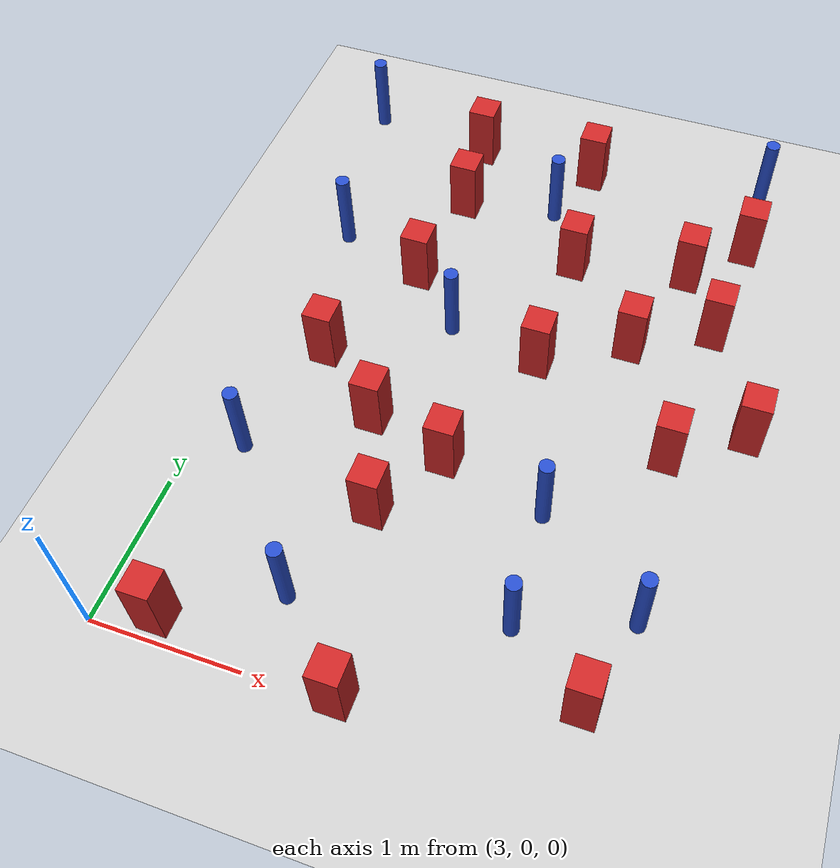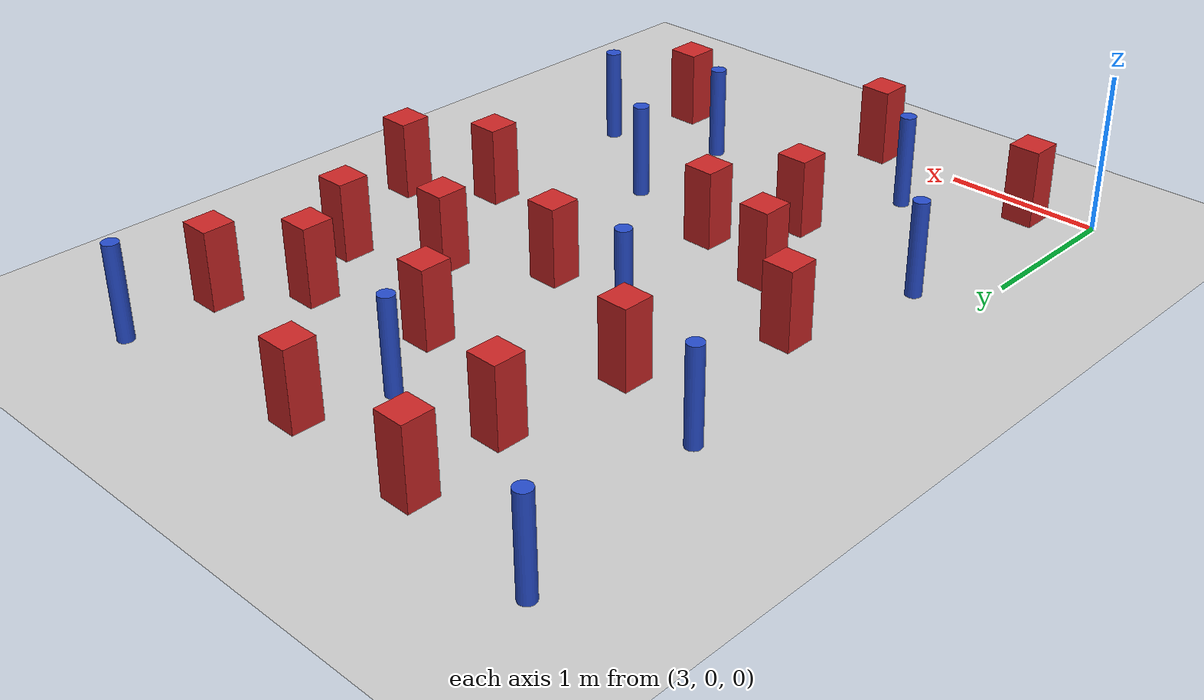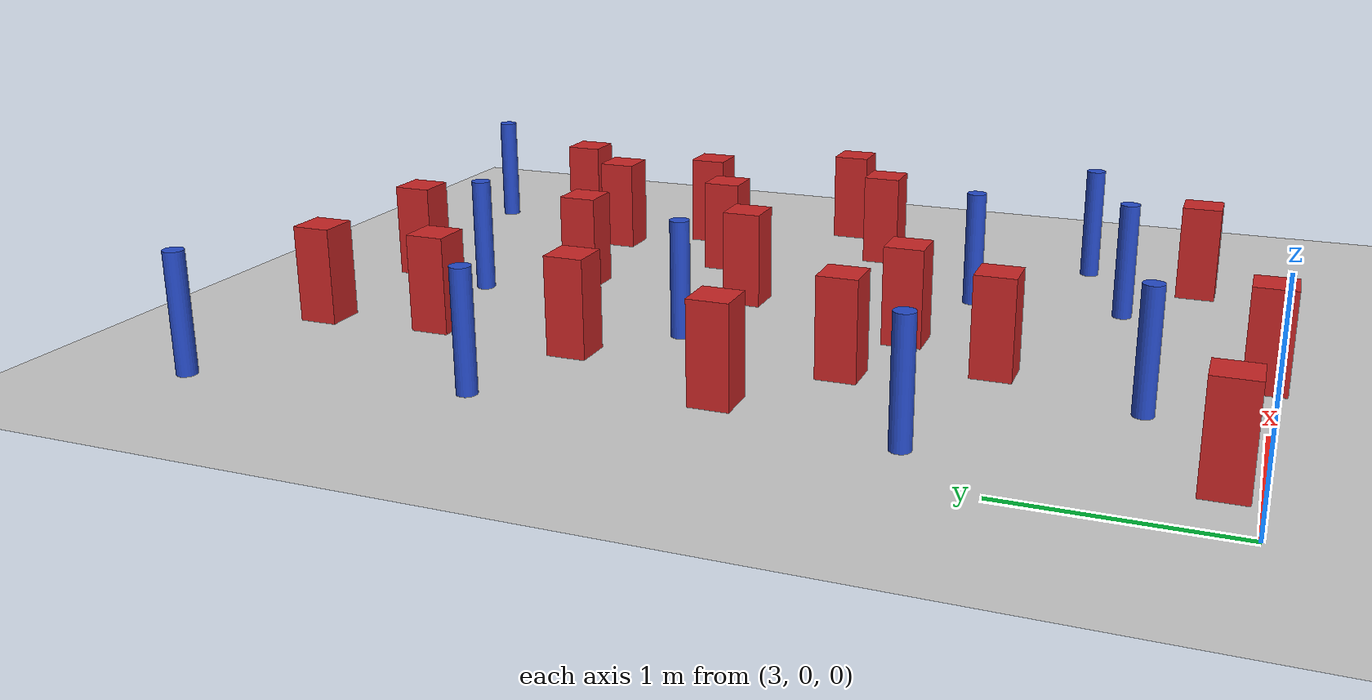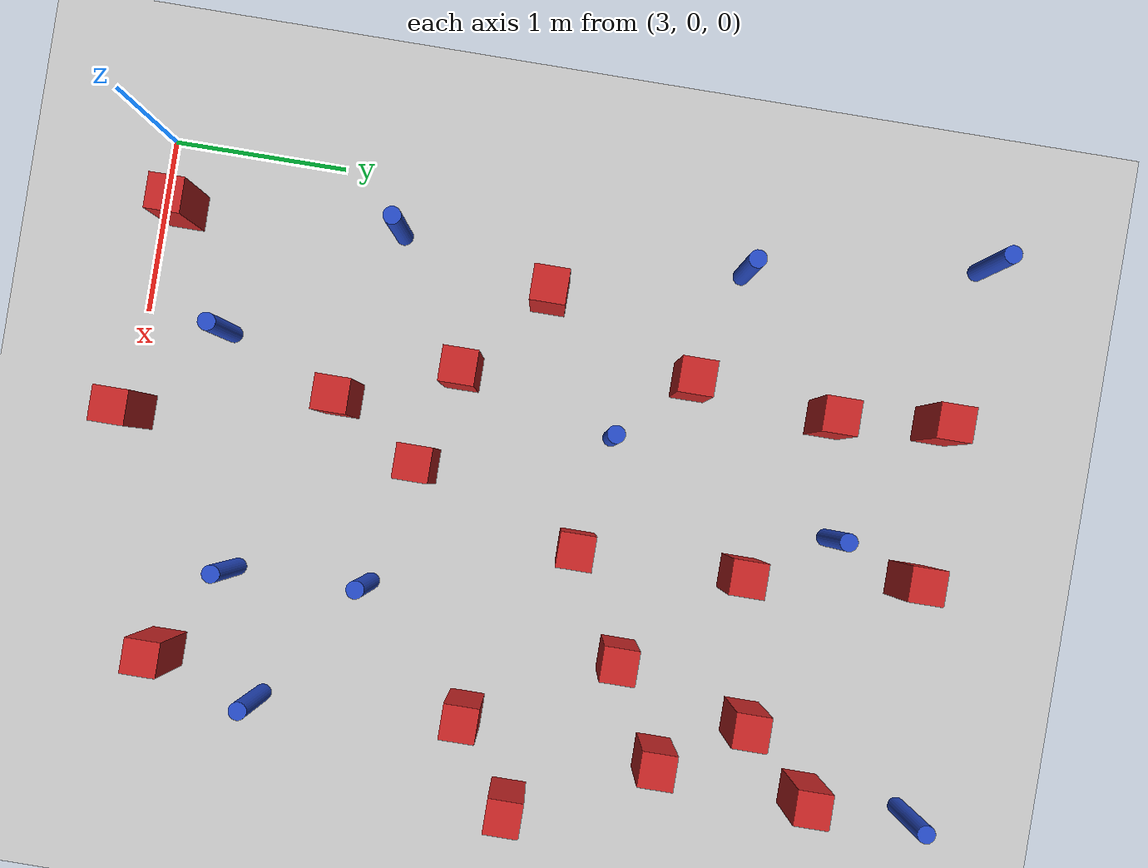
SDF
<sdf version="1.6">
 <world name="default">
  <model name="ground_plane">
   <static>1</static>
   <link name="link">
    <collision name="collision">
     <geometry><plane><normal>0 0 1</normal><size>100 100</size></plane></geometry>
     <surface><friction><ode><mu>100</mu><mu2>50</mu2></ode></friction></surface>
    </collision>
    <visual name="visual">
     <cast_shadows>0</cast_shadows>
     <geometry><plane><normal>0 0 1</normal><size>100 100</size></plane></geometry>
     <material>
      <ambient>1.0 1.0 1.0 1.0</ambient>
      <diffuse>0.8 0.8 0.8 1.0</diffuse>
      <specular>0.01 0.01 0.01 1.000000</specular>
     </material>
    </visual>
   </link>
  </model>
  <model name="square_post_obstacle0">
   <static>true</static>
   <pose>4.83513216771 4.59395278403 1.91545236811e-07 -7.35059704564e-06 1.12565212e-07 2.39332434364e-05</pose>
   <link name="link">
    <pose>0 0 0.25 0 -0 0</pose>
    <inertial>
     <mass>100</mass>
     <inertia>
      <ixx>0.166667</ixx>
      <ixy>0</ixy>
      <ixz>0</ixz>
      <iyy>0.166667</iyy>
      <iyz>0</iyz>
      <izz>0.166667</izz>
     </inertia>
    </inertial>
    <collision name="collision"><geometry><box><size>.2 .2 .5</size></box></geometry></collision>
    <visual name="visual">
     <geometry><box><size>.2 .2 .5</size></box></geometry>
     <material>
      <script><name>Gazebo/Red</name><uri>file://media/materials/scripts/gazebo.material</uri></script>
     </material>
    </visual>
   </link>
  </model>
  <model name="pole_obstacle2">
   <static>true</static>
   <pose>3.33145633506 1.40488259142 7.38925637345e-09 -8.471706928e-08 1.24976765152e-08 -1.74513093012e-07</pose>
   <link name="link">
    <pose>0 0 0.3 0 -0 0</pose>
    <inertial>
     <mass>1</mass>
     <inertia><ixx>0.145833</ixx><ixy>0</ixy><ixz>0</ixz><iyy>0.145833</iyy><iyz>0</iyz><izz>0.125</izz></inertia>
    </inertial>
    <collision name="collision">
     <geometry><cylinder><radius>0.05</radius><length>.6</length></cylinder></geometry>
    </collision>
    <visual name="visual">
     <geometry><cylinder><radius>0.05</radius><length>.6</length></cylinder></geometry>
     <material>
      <script><name>Gazebo/Blue</name><uri>file://media/materials/scripts/gazebo.material</uri></script>
     </material>
    </visual>
   </link>
  </model>
  <model name="pole_obstacle5">
   <static>true</static>
   <pose>3.24524591812 3.37877908854 7.38925637345e-09 -8.47170692798e-08 1.24976764939e-08 -1.74513093025e-07</pose>
   <link name="link">
    <pose>0 0 0.3 0 -0 0</pose>
    <inertial>
     <mass>1</mass>
     <inertia><ixx>0.145833</ixx><ixy>0</ixy><ixz>0</ixz><iyy>0.145833</iyy><iyz>0</iyz><izz>0.125</izz></inertia>
    </inertial>
    <collision name="collision">
     <geometry><cylinder><radius>0.05</radius><length>.6</length></cylinder></geometry>
    </collision>
    <visual name="visual">
     <geometry><cylinder><radius>0.05</radius><length>.6</length></cylinder></geometry>
     <material>
      <script><name>Gazebo/Blue</name><uri>file://media/materials/scripts/gazebo.material</uri></script>
     </material>
    </visual>
   </link>
  </model>
  <model name="square_post_obstacle29">
   <static>true</static>
   <pose>6.13708607684 4.17404303064 1.91545236811e-07 -7.35059704564e-06 1.12565212e-07 2.39332434364e-05</pose>
   <link name="link">
    <pose>0 0 0.25 0 -0 0</pose>
    <inertial>
     <mass>100</mass>
     <inertia>
      <ixx>0.166667</ixx>
      <ixy>0</ixy>
      <ixz>0</ixz>
      <iyy>0.166667</iyy>
      <iyz>0</iyz>
      <izz>0.166667</izz>
     </inertia>
    </inertial>
    <collision name="collision"><geometry><box><size>.2 .2 .5</size></box></geometry></collision>
    <visual name="visual">
     <geometry><box><size>.2 .2 .5</size></box></geometry>
     <material>
      <script><name>Gazebo/Red</name><uri>file://media/materials/scripts/gazebo.material</uri></script>
     </material>
    </visual>
   </link>
  </model>
  <model name="pole_obstacle30">
   <static>true</static>
   <pose>5.3441508463 1.53255572151 7.38925637345e-09 -8.471706928e-08 1.24976765134e-08 -1.74513093015e-07</pose>
   <link name="link">
    <pose>0 0 0.3 0 -0 0</pose>
    <inertial>
     <mass>1</mass>
     <inertia><ixx>0.145833</ixx><ixy>0</ixy><ixz>0</ixz><iyy>0.145833</iyy><iyz>0</iyz><izz>0.125</izz></inertia>
    </inertial>
    <collision name="collision">
     <geometry><cylinder><radius>0.05</radius><length>.6</length></cylinder></geometry>
    </collision>
    <visual name="visual">
     <geometry><cylinder><radius>0.05</radius><length>.6</length></cylinder></geometry>
     <material>
      <script><name>Gazebo/Blue</name><uri>file://media/materials/scripts/gazebo.material</uri></script>
     </material>
    </visual>
   </link>
  </model>
  <model name="square_post_obstacle35">
   <static>true</static>
   <pose>4.6240850288 1.71312362912 1.91545236811e-07 -7.35059704564e-06 1.12565212e-07 2.39332434364e-05</pose>
   <link name="link">
    <pose>0 0 0.25 0 -0 0</pose>
    <inertial>
     <mass>100</mass>
     <inertia>
      <ixx>0.166667</ixx>
      <ixy>0</ixy>
      <ixz>0</ixz>
      <iyy>0.166667</iyy>
      <iyz>0</iyz>
      <izz>0.166667</izz>
     </inertia>
    </inertial>
    <collision name="collision"><geometry><box><size>.2 .2 .5</size></box></geometry></collision>
    <visual name="visual">
     <geometry><box><size>.2 .2 .5</size></box></geometry>
     <material>
      <script><name>Gazebo/Red</name><uri>file://media/materials/scripts/gazebo.material</uri></script>
     </material>
    </visual>
   </link>
  </model>
  <model name="square_post_obstacle40">
   <static>true</static>
   <pose>4.32281516901 1.21332361895 1.91545236811e-07 -7.35059704564e-06 1.12565212e-07 2.39332434364e-05</pose>
   <link name="link">
    <pose>0 0 0.25 0 -0 0</pose>
    <inertial>
     <mass>100</mass>
     <inertia>
      <ixx>0.166667</ixx>
      <ixy>0</ixy>
      <ixz>0</ixz>
      <iyy>0.166667</iyy>
      <iyz>0</iyz>
      <izz>0.166667</izz>
     </inertia>
    </inertial>
    <collision name="collision"><geometry><box><size>.2 .2 .5</size></box></geometry></collision>
    <visual name="visual">
     <geometry><box><size>.2 .2 .5</size></box></geometry>
     <material>
      <script><name>Gazebo/Red</name><uri>file://media/materials/scripts/gazebo.material</uri></script>
     </material>
    </visual>
   </link>
  </model>
  <model name="square_post_obstacle47">
   <static>true</static>
   <pose>6.45544308713 2.51247155464 1.91545236811e-07 -7.35059704564e-06 1.12565212e-07 2.39332434364e-05</pose>
   <link name="link">
    <pose>0 0 0.25 0 -0 0</pose>
    <inertial>
     <mass>100</mass>
     <inertia>
      <ixx>0.166667</ixx>
      <ixy>0</ixy>
      <ixz>0</ixz>
      <iyy>0.166667</iyy>
      <iyz>0</iyz>
      <izz>0.166667</izz>
     </inertia>
    </inertial>
    <collision name="collision"><geometry><box><size>.2 .2 .5</size></box></geometry></collision>
    <visual name="visual">
     <geometry><box><size>.2 .2 .5</size></box></geometry>
     <material>
      <script><name>Gazebo/Red</name><uri>file://media/materials/scripts/gazebo.material</uri></script>
     </material>
    </visual>
   </link>
  </model>
  <model name="square_post_obstacle55">
   <static>true</static>
   <pose>3.92985841278 4.60441485772 1.91545236811e-07 -7.35059704564e-06 1.12565212e-07 2.39332434364e-05</pose>
   <link name="link">
    <pose>0 0 0.25 0 -0 0</pose>
    <inertial>
     <mass>100</mass>
     <inertia>
      <ixx>0.166667</ixx>
      <ixy>0</ixy>
      <ixz>0</ixz>
      <iyy>0.166667</iyy>
      <iyz>0</iyz>
      <izz>0.166667</izz>
     </inertia>
    </inertial>
    <collision name="collision"><geometry><box><size>.2 .2 .5</size></box></geometry></collision>
    <visual name="visual">
     <geometry><box><size>.2 .2 .5</size></box></geometry>
     <material>
      <script><name>Gazebo/Red</name><uri>file://media/materials/scripts/gazebo.material</uri></script>
     </material>
    </visual>
   </link>
  </model>
  <model name="square_post_obstacle57">
   <static>true</static>
   <pose>3.542926451 2.29667868906 1.91545236811e-07 -7.35059704564e-06 1.12565212e-07 2.39332434364e-05</pose>
   <link name="link">
    <pose>0 0 0.25 0 -0 0</pose>
    <inertial>
     <mass>100</mass>
     <inertia>
      <ixx>0.166667</ixx>
      <ixy>0</ixy>
      <ixz>0</ixz>
      <iyy>0.166667</iyy>
      <iyz>0</iyz>
      <izz>0.166667</izz>
     </inertia>
    </inertial>
    <collision name="collision"><geometry><box><size>.2 .2 .5</size></box></geometry></collision>
    <visual name="visual">
     <geometry><box><size>.2 .2 .5</size></box></geometry>
     <material>
      <script><name>Gazebo/Red</name><uri>file://media/materials/scripts/gazebo.material</uri></script>
     </material>
    </visual>
   </link>
  </model>
  <model name="square_post_obstacle67">
   <static>true</static>
   <pose>6.0665706969 3.30246107337 1.91545236811e-07 -7.35059704564e-06 1.12565212e-07 2.39332434364e-05</pose>
   <link name="link">
    <pose>0 0 0.25 0 -0 0</pose>
    <inertial>
     <mass>100</mass>
     <inertia>
      <ixx>0.166667</ixx>
      <ixy>0</ixy>
      <ixz>0</ixz>
      <iyy>0.166667</iyy>
      <iyz>0</iyz>
      <izz>0.166667</izz>
     </inertia>
    </inertial>
    <collision name="collision"><geometry><box><size>.2 .2 .5</size></box></geometry></collision>
    <visual name="visual">
     <geometry><box><size>.2 .2 .5</size></box></geometry>
     <material>
      <script><name>Gazebo/Red</name><uri>file://media/materials/scripts/gazebo.material</uri></script>
     </material>
    </visual>
   </link>
  </model>
  <model name="pole_obstacle87">
   <static>true</static>
   <pose>6.08694970743 1.01501366397 7.38925637345e-09 -8.47170692801e-08 1.24976765139e-08 -1.74513093014e-07</pose>
   <link name="link">
    <pose>0 0 0.3 0 -0 0</pose>
    <inertial>
     <mass>1</mass>
     <inertia><ixx>0.145833</ixx><ixy>0</ixy><ixz>0</ixz><iyy>0.145833</iyy><iyz>0</iyz><izz>0.125</izz></inertia>
    </inertial>
    <collision name="collision">
     <geometry><cylinder><radius>0.05</radius><length>.6</length></cylinder></geometry>
    </collision>
    <visual name="visual">
     <geometry><cylinder><radius>0.05</radius><length>.6</length></cylinder></geometry>
     <material>
      <script><name>Gazebo/Blue</name><uri>file://media/materials/scripts/gazebo.material</uri></script>
     </material>
    </visual>
   </link>
  </model>
  <model name="pole_obstacle90">
   <static>true</static>
   <pose>4.29590201549 2.78081342382 7.38925637345e-09 -8.47170692798e-08 1.24976764937e-08 -1.74513093023e-07</pose>
   <link name="link">
    <pose>0 0 0.3 0 -0 0</pose>
    <inertial>
     <mass>1</mass>
     <inertia><ixx>0.145833</ixx><ixy>0</ixy><ixz>0</ixz><iyy>0.145833</iyy><iyz>0</iyz><izz>0.125</izz></inertia>
    </inertial>
    <collision name="collision">
     <geometry><cylinder><radius>0.05</radius><length>.6</length></cylinder></geometry>
    </collision>
    <visual name="visual">
     <geometry><cylinder><radius>0.05</radius><length>.6</length></cylinder></geometry>
     <material>
      <script><name>Gazebo/Blue</name><uri>file://media/materials/scripts/gazebo.material</uri></script>
     </material>
    </visual>
   </link>
  </model>
  <model name="square_post_obstacle86">
   <static>true</static>
   <pose>5.90977228362 0.421956221232 1.91545236811e-07 -7.35059704564e-06 1.12565212e-07 2.39332434364e-05</pose>
   <link name="link">
    <pose>0 0 0.25 0 -0 0</pose>
    <inertial>
     <mass>100</mass>
     <inertia>
      <ixx>0.166667</ixx>
      <ixy>0</ixy>
      <ixz>0</ixz>
      <iyy>0.166667</iyy>
      <iyz>0</iyz>
      <izz>0.166667</izz>
     </inertia>
    </inertial>
    <collision name="collision"><geometry><box><size>.2 .2 .5</size></box></geometry></collision>
    <visual name="visual">
     <geometry><box><size>.2 .2 .5</size></box></geometry>
     <material>
      <script><name>Gazebo/Red</name><uri>file://media/materials/scripts/gazebo.material</uri></script>
     </material>
    </visual>
   </link>
  </model>
  <model name="square_post_obstacle109">
   <static>true</static>
   <pose>4.95821048879 2.67198824912 1.91545236811e-07 -7.35059704564e-06 1.12565212e-07 2.39332434364e-05</pose>
   <link name="link">
    <pose>0 0 0.25 0 -0 0</pose>
    <inertial>
     <mass>100</mass>
     <inertia>
      <ixx>0.166667</ixx>
      <ixy>0</ixy>
      <ixz>0</ixz>
      <iyy>0.166667</iyy>
      <iyz>0</iyz>
      <izz>0.166667</izz>
     </inertia>
    </inertial>
    <collision name="collision"><geometry><box><size>.2 .2 .5</size></box></geometry></collision>
    <visual name="visual">
     <geometry><box><size>.2 .2 .5</size></box></geometry>
     <material>
      <script><name>Gazebo/Red</name><uri>file://media/materials/scripts/gazebo.material</uri></script>
     </material>
    </visual>
   </link>
  </model>
  <model name="pole_obstacle128">
   <static>true</static>
   <pose>4.66731109296 4.10421571171 7.38925637345e-09 -8.47170692796e-08 1.24976764786e-08 -1.74513093032e-07</pose>
   <link name="link">
    <pose>0 0 0.3 0 -0 0</pose>
    <inertial>
     <mass>1</mass>
     <inertia><ixx>0.145833</ixx><ixy>0</ixy><ixz>0</ixz><iyy>0.145833</iyy><iyz>0</iyz><izz>0.125</izz></inertia>
    </inertial>
    <collision name="collision">
     <geometry><cylinder><radius>0.05</radius><length>.6</length></cylinder></geometry>
    </collision>
    <visual name="visual">
     <geometry><cylinder><radius>0.05</radius><length>.6</length></cylinder></geometry>
     <material>
      <script><name>Gazebo/Blue</name><uri>file://media/materials/scripts/gazebo.material</uri></script>
     </material>
    </visual>
   </link>
  </model>
  <model name="square_post_obstacle131">
   <static>true</static>
   <pose>5.53539433607 3.00687245319 1.91545236811e-07 -7.35059704564e-06 1.12565212e-07 2.39332434364e-05</pose>
   <link name="link">
    <pose>0 0 0.25 0 -0 0</pose>
    <inertial>
     <mass>100</mass>
     <inertia>
      <ixx>0.166667</ixx>
      <ixy>0</ixy>
      <ixz>0</ixz>
      <iyy>0.166667</iyy>
      <iyz>0</iyz>
      <izz>0.166667</izz>
     </inertia>
    </inertial>
    <collision name="collision"><geometry><box><size>.2 .2 .5</size></box></geometry></collision>
    <visual name="visual">
     <geometry><box><size>.2 .2 .5</size></box></geometry>
     <material>
      <script><name>Gazebo/Red</name><uri>file://media/materials/scripts/gazebo.material</uri></script>
     </material>
    </visual>
   </link>
  </model>
  <model name="pole_obstacle151">
   <static>true</static>
   <pose>5.38533523814 0.754646965506 7.38925637345e-09 -8.47170692799e-08 1.24976765038e-08 -1.74513093018e-07</pose>
   <link name="link">
    <pose>0 0 0.3 0 -0 0</pose>
    <inertial>
     <mass>1</mass>
     <inertia><ixx>0.145833</ixx><ixy>0</ixy><ixz>0</ixz><iyy>0.145833</iyy><iyz>0</iyz><izz>0.125</izz></inertia>
    </inertial>
    <collision name="collision">
     <geometry><cylinder><radius>0.05</radius><length>.6</length></cylinder></geometry>
    </collision>
    <visual name="visual">
     <geometry><cylinder><radius>0.05</radius><length>.6</length></cylinder></geometry>
     <material>
      <script><name>Gazebo/Blue</name><uri>file://media/materials/scripts/gazebo.material</uri></script>
     </material>
    </visual>
   </link>
  </model>
  <model name="square_post_obstacle144">
   <static>true</static>
   <pose>4.95369548418 3.62554451247 1.91545236811e-07 -7.35059704564e-06 1.12565212e-07 2.39332434364e-05</pose>
   <link name="link">
    <pose>0 0 0.25 0 -0 0</pose>
    <inertial>
     <mass>100</mass>
     <inertia>
      <ixx>0.166667</ixx>
      <ixy>0</ixy>
      <ixz>0</ixz>
      <iyy>0.166667</iyy>
      <iyz>0</iyz>
      <izz>0.166667</izz>
     </inertia>
    </inertial>
    <collision name="collision"><geometry><box><size>.2 .2 .5</size></box></geometry></collision>
    <visual name="visual">
     <geometry><box><size>.2 .2 .5</size></box></geometry>
     <material>
      <script><name>Gazebo/Red</name><uri>file://media/materials/scripts/gazebo.material</uri></script>
     </material>
    </visual>
   </link>
  </model>
  <model name="square_post_obstacle158">
   <static>true</static>
   <pose>4.05989963006 1.87571669476 1.91545236811e-07 -7.35059704564e-06 1.12565212e-07 2.39332434364e-05</pose>
   <link name="link">
    <pose>0 0 0.25 0 -0 0</pose>
    <inertial>
     <mass>100</mass>
     <inertia>
      <ixx>0.166667</ixx>
      <ixy>0</ixy>
      <ixz>0</ixz>
      <iyy>0.166667</iyy>
      <iyz>0</iyz>
      <izz>0.166667</izz>
     </inertia>
    </inertial>
    <collision name="collision"><geometry><box><size>.2 .2 .5</size></box></geometry></collision>
    <visual name="visual">
     <geometry><box><size>.2 .2 .5</size></box></geometry>
     <material>
      <script><name>Gazebo/Red</name><uri>file://media/materials/scripts/gazebo.material</uri></script>
     </material>
    </visual>
   </link>
  </model>
  <model name="pole_obstacle167">
   <static>true</static>
   <pose>3.0022311975 4.72558989187 7.38925637345e-09 -8.47170692798e-08 1.24976765033e-08 -1.74513093019e-07</pose>
   <link name="link">
    <pose>0 0 0.3 0 -0 0</pose>
    <inertial>
     <mass>1</mass>
     <inertia><ixx>0.145833</ixx><ixy>0</ixy><ixz>0</ixz><iyy>0.145833</iyy><iyz>0</iyz><izz>0.125</izz></inertia>
    </inertial>
    <collision name="collision">
     <geometry><cylinder><radius>0.05</radius><length>.6</length></cylinder></geometry>
    </collision>
    <visual name="visual">
     <geometry><cylinder><radius>0.05</radius><length>.6</length></cylinder></geometry>
     <material>
      <script><name>Gazebo/Blue</name><uri>file://media/materials/scripts/gazebo.material</uri></script>
     </material>
    </visual>
   </link>
  </model>
  <model name="pole_obstacle171">
   <static>true</static>
   <pose>4.05219927883 0.514866557613 7.38925637345e-09 -8.471706928e-08 1.24976765164e-08 -1.74513093012e-07</pose>
   <link name="link">
    <pose>0 0 0.3 0 -0 0</pose>
    <inertial>
     <mass>1</mass>
     <inertia><ixx>0.145833</ixx><ixy>0</ixy><ixz>0</ixz><iyy>0.145833</iyy><iyz>0</iyz><izz>0.125</izz></inertia>
    </inertial>
    <collision name="collision">
     <geometry><cylinder><radius>0.05</radius><length>.6</length></cylinder></geometry>
    </collision>
    <visual name="visual">
     <geometry><cylinder><radius>0.05</radius><length>.6</length></cylinder></geometry>
     <material>
      <script><name>Gazebo/Blue</name><uri>file://media/materials/scripts/gazebo.material</uri></script>
     </material>
    </visual>
   </link>
  </model>
  <model name="pole_obstacle184">
   <static>true</static>
   <pose>6.14451662533 4.76596867383 7.38925637345e-09 -8.47170692796e-08 1.24976764786e-08 -1.74513093032e-07</pose>
   <link name="link">
    <pose>0 0 0.3 0 -0 0</pose>
    <inertial>
     <mass>1</mass>
     <inertia><ixx>0.145833</ixx><ixy>0</ixy><ixz>0</ixz><iyy>0.145833</iyy><iyz>0</iyz><izz>0.125</izz></inertia>
    </inertial>
    <collision name="collision">
     <geometry><cylinder><radius>0.05</radius><length>.6</length></cylinder></geometry>
    </collision>
    <visual name="visual">
     <geometry><cylinder><radius>0.05</radius><length>.6</length></cylinder></geometry>
     <material>
      <script><name>Gazebo/Blue</name><uri>file://media/materials/scripts/gazebo.material</uri></script>
     </material>
    </visual>
   </link>
  </model>
  <model name="square_post_obstacle178">
   <static>true</static>
   <pose>5.98564520383 2.19281158726 1.91545236811e-07 -7.35059704564e-06 1.12565212e-07 2.39332434364e-05</pose>
   <link name="link">
    <pose>0 0 0.25 0 -0 0</pose>
    <inertial>
     <mass>100</mass>
     <inertia>
      <ixx>0.166667</ixx>
      <ixy>0</ixy>
      <ixz>0</ixz>
      <iyy>0.166667</iyy>
      <iyz>0</iyz>
      <izz>0.166667</izz>
     </inertia>
    </inertial>
    <collision name="collision"><geometry><box><size>.2 .2 .5</size></box></geometry></collision>
    <visual name="visual">
     <geometry><box><size>.2 .2 .5</size></box></geometry>
     <material>
      <script><name>Gazebo/Red</name><uri>file://media/materials/scripts/gazebo.material</uri></script>
     </material>
    </visual>
   </link>
  </model>
  <model name="square_post_obstacle198">
   <static>true</static>
   <pose>3.38894658551 0.144630837443 1.91545236811e-07 -7.35059704564e-06 1.12565212e-07 2.39332434364e-05</pose>
   <link name="link">
    <pose>0 0 0.25 0 -0 0</pose>
    <inertial>
     <mass>100</mass>
     <inertia>
      <ixx>0.166667</ixx>
      <ixy>0</ixy>
      <ixz>0</ixz>
      <iyy>0.166667</iyy>
      <iyz>0</iyz>
      <izz>0.166667</izz>
     </inertia>
    </inertial>
    <collision name="collision"><geometry><box><size>.2 .2 .5</size></box></geometry></collision>
    <visual name="visual">
     <geometry><box><size>.2 .2 .5</size></box></geometry>
     <material>
      <script><name>Gazebo/Red</name><uri>file://media/materials/scripts/gazebo.material</uri></script>
     </material>
    </visual>
   </link>
  </model>
  <model name="square_post_obstacle202">
   <static>true</static>
   <pose>3.99283770379 3.98304295684 1.91545236811e-07 -7.35059704564e-06 1.12565212e-07 2.39332434364e-05</pose>
   <link name="link">
    <pose>0 0 0.25 0 -0 0</pose>
    <inertial>
     <mass>100</mass>
     <inertia>
      <ixx>0.166667</ixx>
      <ixy>0</ixy>
      <ixz>0</ixz>
      <iyy>0.166667</iyy>
      <iyz>0</iyz>
      <izz>0.166667</izz>
     </inertia>
    </inertial>
    <collision name="collision"><geometry><box><size>.2 .2 .5</size></box></geometry></collision>
    <visual name="visual">
     <geometry><box><size>.2 .2 .5</size></box></geometry>
     <material>
      <script><name>Gazebo/Red</name><uri>file://media/materials/scripts/gazebo.material</uri></script>
     </material>
    </visual>
   </link>
  </model>
  <model name="square_post_obstacle206">
   <static>true</static>
   <pose>5.77633779933 3.7761383317 1.91545236811e-07 -7.35059704564e-06 1.12565212e-07 2.39332434364e-05</pose>
   <link name="link">
    <pose>0 0 0.25 0 -0 0</pose>
    <inertial>
     <mass>100</mass>
     <inertia>
      <ixx>0.166667</ixx>
      <ixy>0</ixy>
      <ixz>0</ixz>
      <iyy>0.166667</iyy>
      <iyz>0</iyz>
      <izz>0.166667</izz>
     </inertia>
    </inertial>
    <collision name="collision"><geometry><box><size>.2 .2 .5</size></box></geometry></collision>
    <visual name="visual">
     <geometry><box><size>.2 .2 .5</size></box></geometry>
     <material>
      <script><name>Gazebo/Red</name><uri>file://media/materials/scripts/gazebo.material</uri></script>
     </material>
    </visual>
   </link>
  </model>
  <model name="square_post_obstacle214">
   <static>true</static>
   <pose>3.90677323318 3.17406138523 1.91545236811e-07 -7.35059704564e-06 1.12565212e-07 2.39332434364e-05</pose>
   <link name="link">
    <pose>0 0 0.25 0 -0 0</pose>
    <inertial>
     <mass>100</mass>
     <inertia>
      <ixx>0.166667</ixx>
      <ixy>0</ixy>
      <ixz>0</ixz>
      <iyy>0.166667</iyy>
      <iyz>0</iyz>
      <izz>0.166667</izz>
     </inertia>
    </inertial>
    <collision name="collision"><geometry><box><size>.2 .2 .5</size></box></geometry></collision>
    <visual name="visual">
     <geometry><box><size>.2 .2 .5</size></box></geometry>
     <material>
      <script><name>Gazebo/Red</name><uri>file://media/materials/scripts/gazebo.material</uri></script>
     </material>
    </visual>
   </link>
  </model>
  <model name="square_post_obstacle217">
   <static>true</static>
   <pose>4.5792899648 0.0296019880809 1.91545236811e-07 -7.35059704564e-06 1.12565212e-07 2.39332434364e-05</pose>
   <link name="link">
    <pose>0 0 0.25 0 -0 0</pose>
    <inertial>
     <mass>100</mass>
     <inertia>
      <ixx>0.166667</ixx>
      <ixy>0</ixy>
      <ixz>0</ixz>
      <iyy>0.166667</iyy>
      <iyz>0</iyz>
      <izz>0.166667</izz>
     </inertia>
    </inertial>
    <collision name="collision"><geometry><box><size>.2 .2 .5</size></box></geometry></collision>
    <visual name="visual">
     <geometry><box><size>.2 .2 .5</size></box></geometry>
     <material>
      <script><name>Gazebo/Red</name><uri>file://media/materials/scripts/gazebo.material</uri></script>
     </material>
    </visual>
   </link>
  </model>
 </world>
</sdf>
